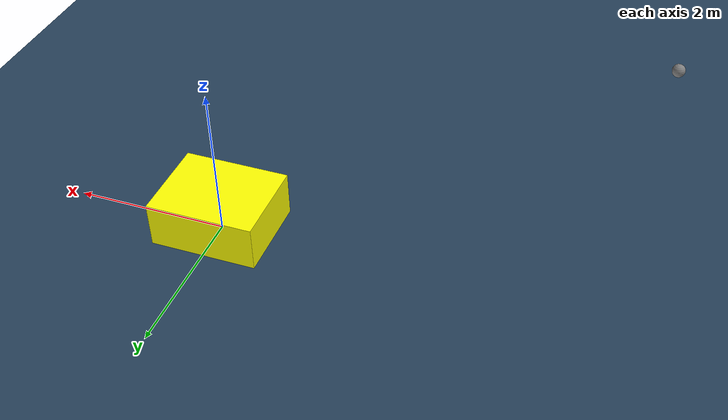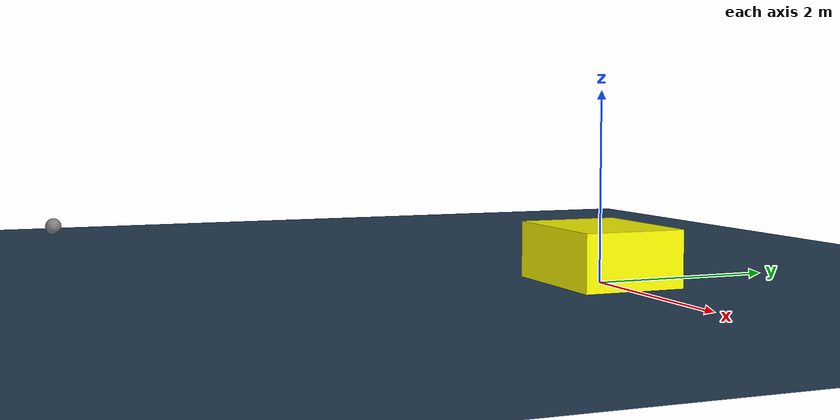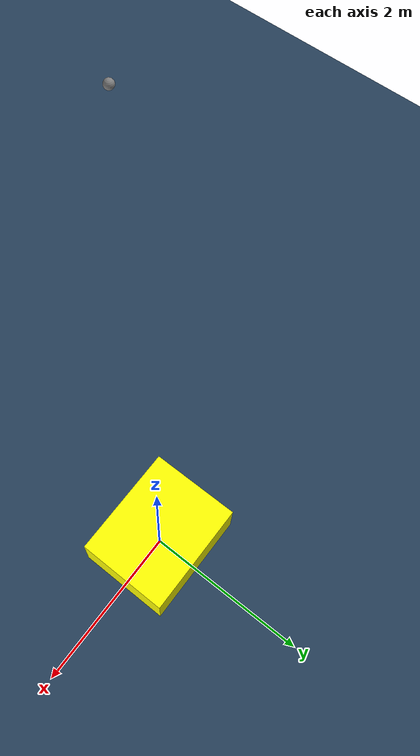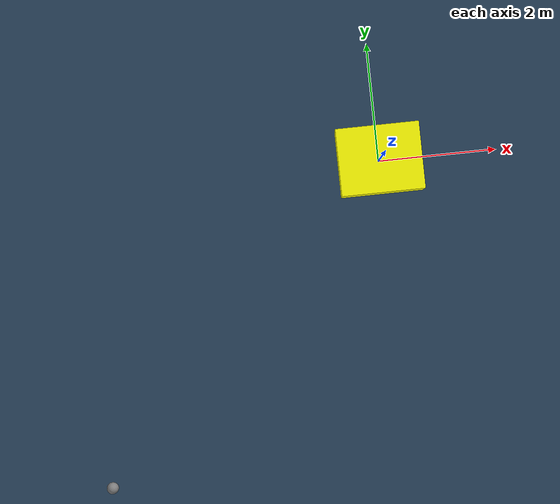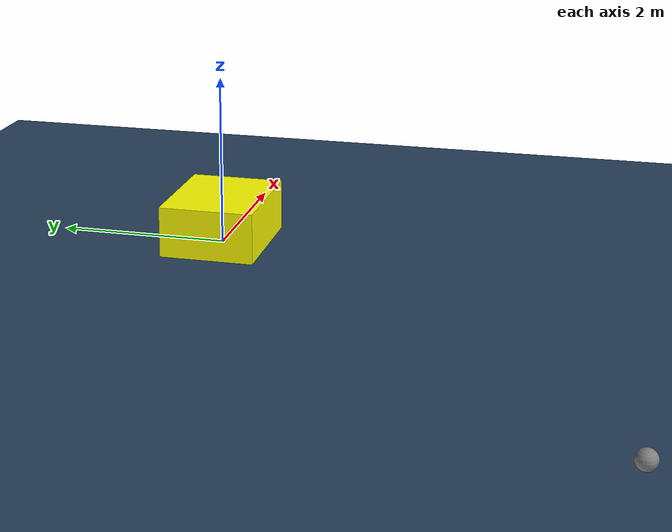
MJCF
<mujoco model="generated_environment">
  <compiler angle="radian"/>

  <option timestep="0.01" integrator="RK4" cone="elliptic"/>

  <visual>
    <map force="1"/>
    <scale forcewidth="0.005" contactwidth="1" contactheight="0.04"/>
    <rgba contactforce="0.2 0.98 0.2 0.8"/>
  </visual>

  <default>
    <geom density="1"/>
  </default>

  <asset>
    <texture type="skybox" builtin="gradient" rgb1="0.3 0.5 0.7" rgb2="0 0 0" width="512" height="3072"/>
    <texture type="2d" name="groundplane" builtin="checker" mark="edge" rgb1="0.2 0.3 0.4" rgb2="0.1 0.2 0.3" markrgb="0.8 0.8 0.8" width="300" height="300"/>
    <texture type="cube" name="body" builtin="flat" mark="cross" rgb1="0.8 0.6 0.4" rgb2="0.8 0.6 0.4" markrgb="1 1 1" width="128" height="768"/>
    <material name="groundplane" texture="groundplane" texuniform="true" texrepeat="5 5" reflectance="0.2"/>
    <material name="body" texture="body" texuniform="true" rgba="0.8 0.6 0.4 1"/>
    <material name="robot" rgba="0 1 0 1"/>
  </asset>

  <worldbody>
    <geom name="floor" size="0 0 0.05" type="plane" condim="4" friction="0.5 0.005 0.001" material="groundplane"/>
    <site name="origin" pos="0 0 0" size="0.02" rgba="1 1 1 1"/>
    <site name="x_axis" pos="0.1 0 0" size="0.02" rgba="1 0 0 1"/>
    <site name="y_axis" pos="0 0.1 0" size="0.02" rgba="0 1 0 1"/>
    <site name="z_axis" pos="0 0 0.1" size="0.02" rgba="0 0 1 1"/>
    <light pos="0 0 1.5" dir="0 0 -1" directional="true"/>
    <body name="robot">
      <joint name="joint_x" pos="0 0 0" axis="1 0 0" type="slide"/>
      <joint name="joint_y" pos="0 0 0" axis="0 1 0" type="slide"/>
      <geom name="robot" size="0.1" pos="-5 -5 0.3" condim="4" mass="5"/>
      <site name="sensor_ball" pos="0 0 0"/>
    </body>
    <body name="obstacle_1_movable">
      <joint type="free" limited="false" actuatorfrclimited="false"/>
      <geom name="obstacle_1_movable" size="0.693208 0.557154 0.3" pos="0 0 0.3" type="box" condim="4" friction="0 0.005 0.001" mass="0.1" rgba="1 1 0 1"/>
    </body>
  </worldbody>

  <actuator>
    <general name="actuator_x" joint="joint_x" ctrlrange="-1 1"/>
    <general name="actuator_y" joint="joint_y" ctrlrange="-1 1"/>
  </actuator>
</mujoco>
